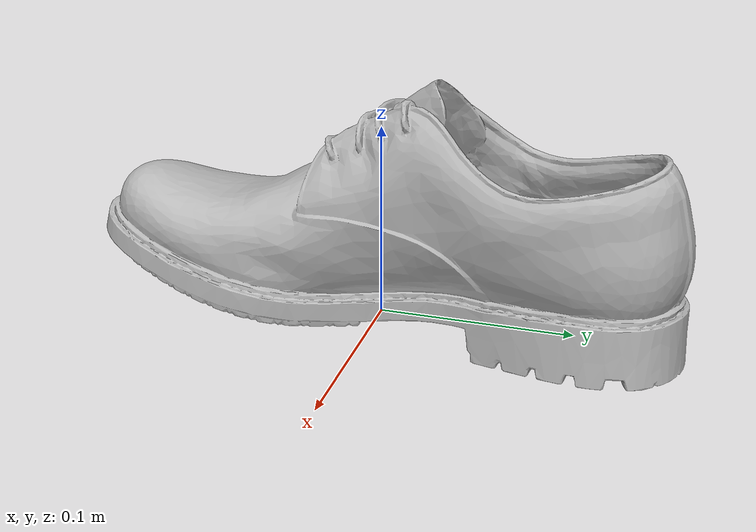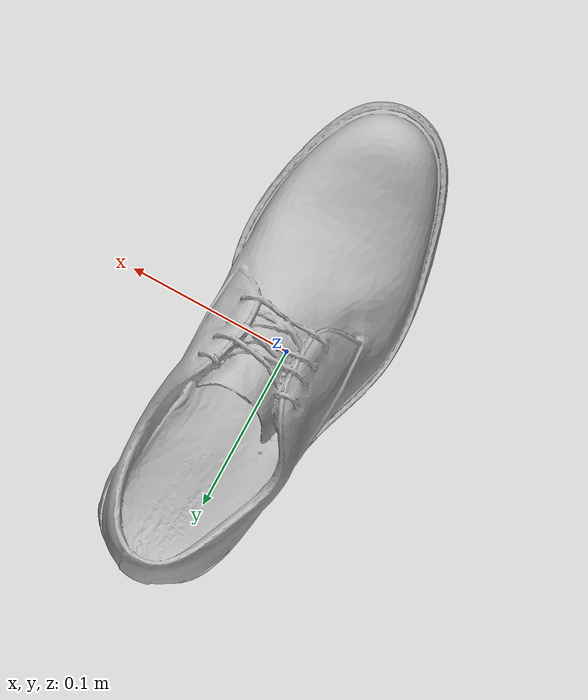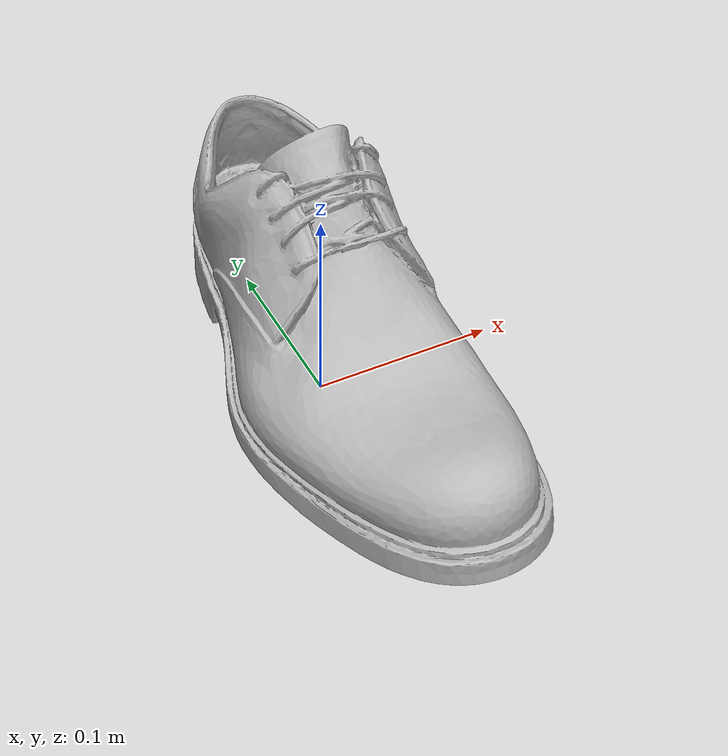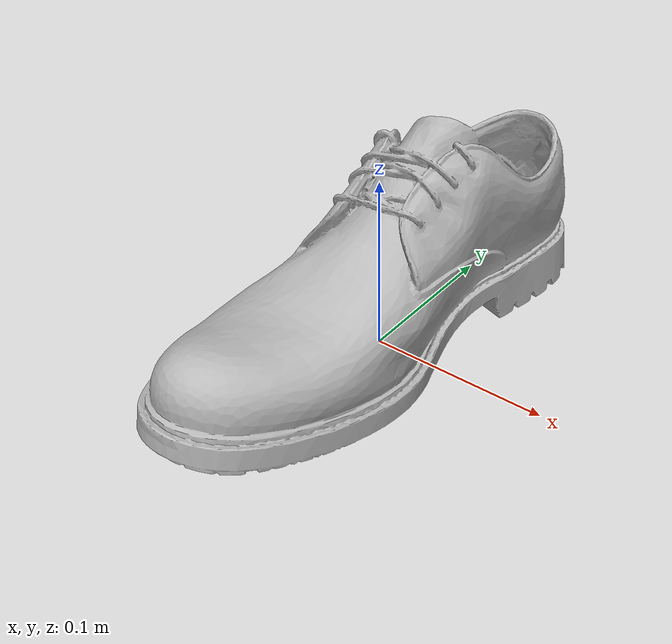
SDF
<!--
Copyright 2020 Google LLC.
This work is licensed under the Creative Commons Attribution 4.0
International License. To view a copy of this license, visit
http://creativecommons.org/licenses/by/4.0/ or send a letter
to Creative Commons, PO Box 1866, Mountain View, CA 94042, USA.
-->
<?xml version="1.0" ?>
<sdf version="1.6">
    <model name="Timberland_Mens_Earthkeepers_Stormbuck_Plain_Toe_Oxford">
        <link name="link_0">
            <visual name="visual">
                <geometry>
                    <mesh>
                        <uri>meshes/model.obj</uri>
                    </mesh>
                </geometry>
            </visual>
            <collision name="collision_0">
                <geometry>
                    <mesh>
                        <uri>meshes/model.obj</uri>
                    </mesh>
                </geometry>
            </collision>
        </link>
    </model>
</sdf>
